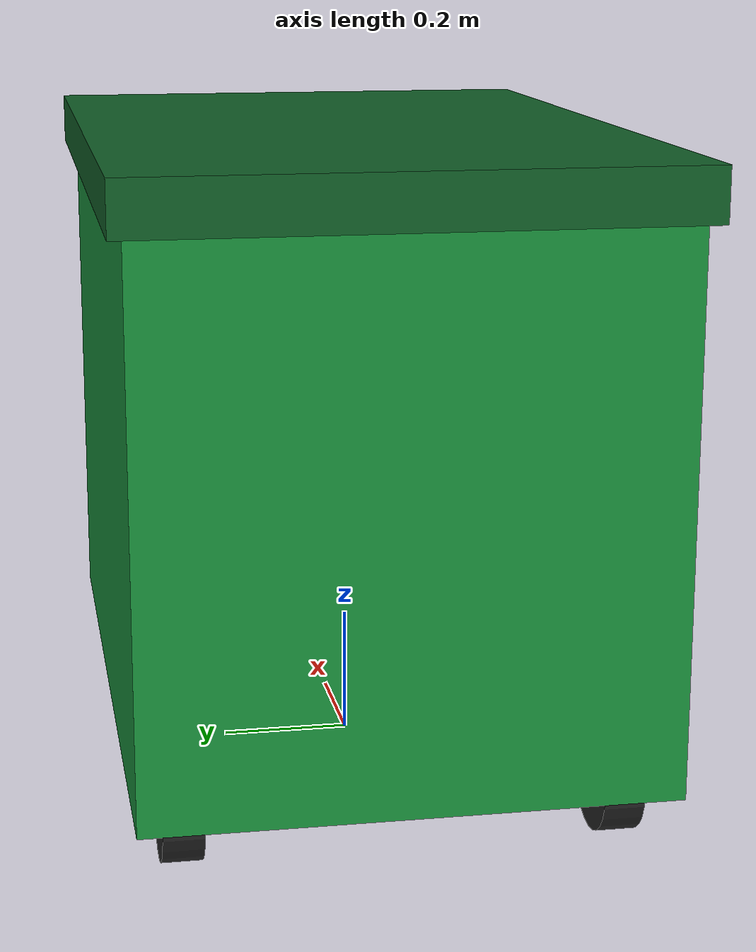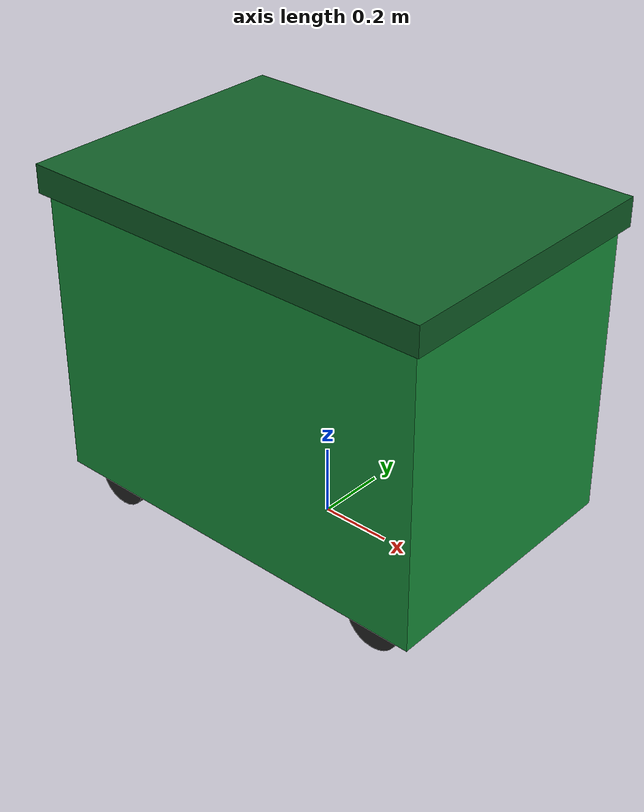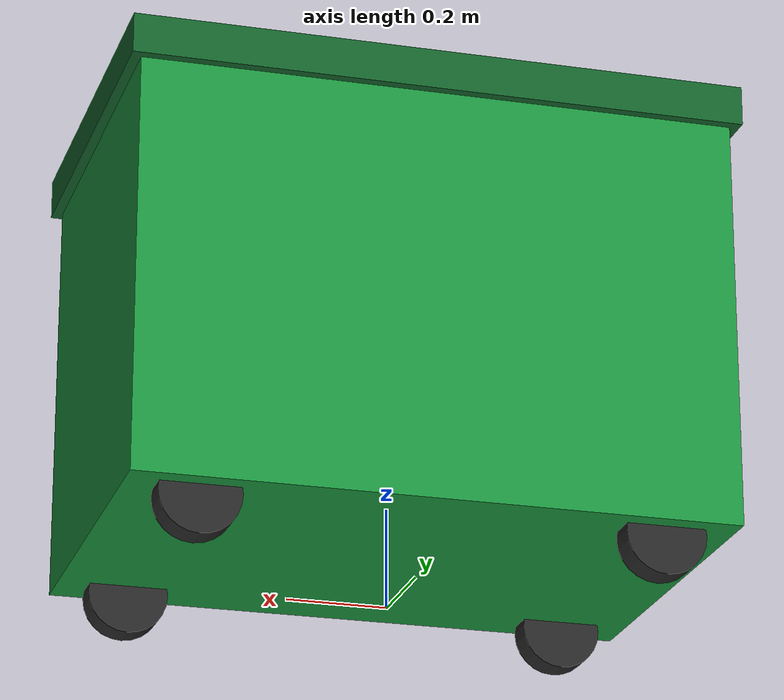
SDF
<?xml version="1.0"?>
<sdf version="1.9">
  <model name="dumpster">
    <static>true</static>
    <link name="link">
      <collision name="col">
        <pose>0 0 0.5 0 0 0</pose>
        <geometry><box><size>1.2 0.8 1.0</size></box></geometry>
      </collision>
      <!-- Main Green Industrial Body -->
      <visual name="body">
        <pose>0 0 0.52 0 0 0</pose>
        <geometry><box><size>1.18 0.78 0.85</size></box></geometry>
        <material><ambient>0.08 0.45 0.18 1</ambient><diffuse>0.10 0.58 0.24 1</diffuse></material>
      </visual>
      <!-- Dark Lid Frame -->
      <visual name="lid">
        <pose>0 0 0.96 0 0 0</pose>
        <geometry><box><size>1.22 0.82 0.08</size></box></geometry>
        <material><ambient>0.05 0.30 0.12 1</ambient><diffuse>0.07 0.38 0.16 1</diffuse></material>
      </visual>
      <!-- Black Wheels & Base Frame -->
      <visual name="w_fl"><pose>0.45 0.32 0.08 1.57 0 0</pose><geometry><cylinder><radius>0.08</radius><length>0.06</length></cylinder></geometry><material><ambient>0.1 0.1 0.1 1</ambient><diffuse>0.15 0.15 0.15 1</diffuse></material></visual>
      <visual name="w_fr"><pose>0.45 -0.32 0.08 1.57 0 0</pose><geometry><cylinder><radius>0.08</radius><length>0.06</length></cylinder></geometry><material><ambient>0.1 0.1 0.1 1</ambient><diffuse>0.15 0.15 0.15 1</diffuse></material></visual>
      <visual name="w_rl"><pose>-0.45 0.32 0.08 1.57 0 0</pose><geometry><cylinder><radius>0.08</radius><length>0.06</length></cylinder></geometry><material><ambient>0.1 0.1 0.1 1</ambient><diffuse>0.15 0.15 0.15 1</diffuse></material></visual>
      <visual name="w_rr"><pose>-0.45 -0.32 0.08 1.57 0 0</pose><geometry><cylinder><radius>0.08</radius><length>0.06</length></cylinder></geometry><material><ambient>0.1 0.1 0.1 1</ambient><diffuse>0.15 0.15 0.15 1</diffuse></material></visual>
    </link>
  </model>
</sdf>
